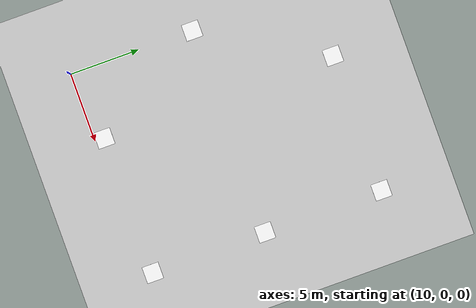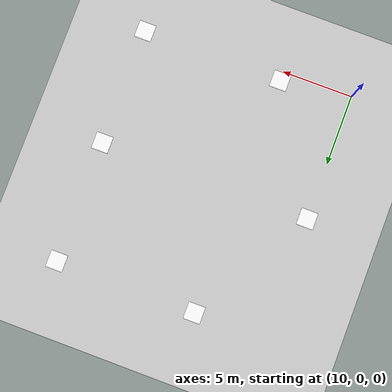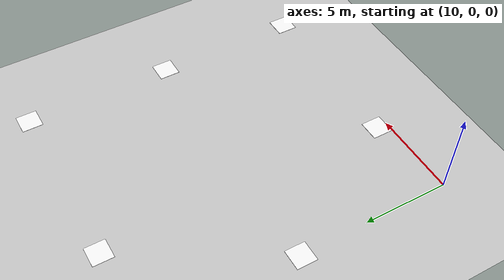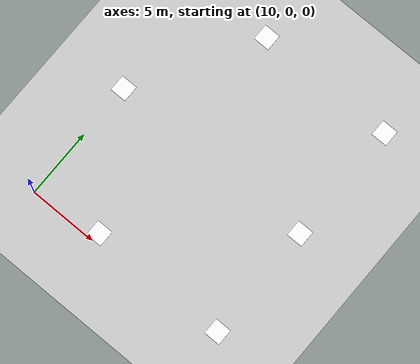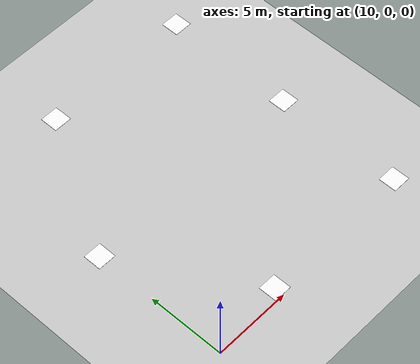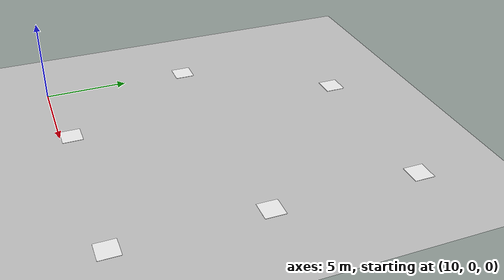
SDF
<sdf version="1.9">
 <world name="sancak_world">
  <plugin filename="gz-sim-physics-system" name="gz::sim::systems::Physics"/>
  <plugin filename="gz-sim-user-commands-system" name="gz::sim::systems::UserCommands"/>
  <plugin filename="gz-sim-scene-broadcaster-system" name="gz::sim::systems::SceneBroadcaster"/>
  <light name="sun" type="directional"><pose>0 0 10 0 0 0</pose></light>
  <include><uri>https://fuel.gazebosim.org/1.0/OpenRobotics/models/Ground Plane</uri></include>
  <include><uri>file:///home/zehra/sancak_ws/models/qr_plaka_1</uri><pose>25.0 9.0 0.02 0 0 0</pose></include>
  <include><uri>file:///home/zehra/sancak_ws/models/qr_plaka_2</uri><pose>25.0 17.66 0.02 0 0 0</pose></include>
  <include><uri>file:///home/zehra/sancak_ws/models/qr_plaka_3</uri><pose>15.0 0.66 0.02 0 0 0</pose></include>
  <include><uri>file:///home/zehra/sancak_ws/models/qr_plaka_4</uri><pose>10.0 9.0 0.02 0 0 0</pose></include>
  <include><uri>file:///home/zehra/sancak_ws/models/qr_plaka_5</uri><pose>15.0 17.66 0.02 0 0 0</pose></include>
  <include><uri>file:///home/zehra/sancak_ws/models/qr_plaka_6</uri><pose>25.0 0.66 0.02 0 0 0</pose></include>
 </world>
</sdf>

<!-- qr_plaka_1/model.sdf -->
<sdf version="1.9">

<model name="qr_plaka_1">

  <static>true</static>

  <link name="link">

    <visual name="visual">

      <geometry>
        <box>
          <size>1.2 1.2 0.02</size>
        </box>
      </geometry>

      <material>
        <diffuse>1 1 1 1</diffuse>
        <ambient>1 1 1 1</ambient>

        <pbr>
          <metal>
            <albedo_map>
              file:///home/tunahan/sancak_ws/models/qr_plaka_1/materials/textures/qr_1.png
            </albedo_map>
          </metal>
        </pbr>

      </material>

    </visual>

    <collision name="collision">

      <geometry>
        <box>
          <size>1.2 1.2 0.02</size>
        </box>
      </geometry>

    </collision>

  </link>

</model>

</sdf>

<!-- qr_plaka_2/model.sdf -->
<sdf version="1.9">

<model name="qr_plaka_2">

  <static>true</static>

  <link name="link">

    <visual name="visual">

      <geometry>
        <box>
          <size>1.2 1.2 0.02</size>
        </box>
      </geometry>

      <material>
        <ambient>1 1 1 1</ambient>
        <diffuse>1 1 1 1</diffuse>

        <pbr>
          <metal>
            <albedo_map>
              file:///home/tunahan/sancak_ws/models/qr_plaka_2/materials/textures/qr_2.png
            </albedo_map>
          </metal>
        </pbr>

      </material>

    </visual>

    <collision name="collision">
      <geometry>
        <box>
          <size>1.2 1.2 0.02</size>
        </box>
      </geometry>
    </collision>

  </link>

</model>

</sdf>

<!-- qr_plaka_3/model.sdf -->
<sdf version="1.9">

<model name="qr_plaka_3">

  <static>true</static>

  <link name="link">

    <visual name="visual">

      <geometry>
        <box>
          <size>1.2 1.2 0.02</size>
        </box>
      </geometry>

      <material>
        <ambient>1 1 1 1</ambient>
        <diffuse>1 1 1 1</diffuse>

        <pbr>
          <metal>
            <albedo_map>
              file:///home/tunahan/sancak_ws/models/qr_plaka_3/materials/textures/qr_3.png
            </albedo_map>
          </metal>
        </pbr>

      </material>

    </visual>

    <collision name="collision">
      <geometry>
        <box>
          <size>1.2 1.2 0.02</size>
        </box>
      </geometry>
    </collision>

  </link>

</model>

</sdf>

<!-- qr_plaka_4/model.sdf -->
<sdf version="1.9">

<model name="qr_plaka_4">

  <static>true</static>

  <link name="link">

    <visual name="visual">

      <geometry>
        <box>
          <size>1.2 1.2 0.02</size>
        </box>
      </geometry>

      <material>
        <ambient>1 1 1 1</ambient>
        <diffuse>1 1 1 1</diffuse>

        <pbr>
          <metal>
            <albedo_map>
              file:///home/tunahan/sancak_ws/models/qr_plaka_4/materials/textures/qr_4.png
            </albedo_map>
          </metal>
        </pbr>

      </material>

    </visual>

    <collision name="collision">
      <geometry>
        <box>
          <size>1.2 1.2 0.02</size>
        </box>
      </geometry>
    </collision>

  </link>

</model>

</sdf>

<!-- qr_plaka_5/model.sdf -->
<sdf version="1.9">

<model name="qr_plaka_5">

  <static>true</static>

  <link name="link">

    <visual name="visual">

      <geometry>
        <box>
          <size>1.2 1.2 0.02</size>
        </box>
      </geometry>

      <material>
        <ambient>1 1 1 1</ambient>
        <diffuse>1 1 1 1</diffuse>

        <pbr>
          <metal>
            <albedo_map>
              file:///home/tunahan/sancak_ws/models/qr_plaka_5/materials/textures/qr_5.png
            </albedo_map>
          </metal>
        </pbr>

      </material>

    </visual>

    <collision name="collision">
      <geometry>
        <box>
          <size>1.2 1.2 0.02</size>
        </box>
      </geometry>
    </collision>

  </link>

</model>

</sdf>

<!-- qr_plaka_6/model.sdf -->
<sdf version="1.9">

<model name="qr_plaka_6">

  <static>true</static>

  <link name="link">

    <visual name="visual">

      <geometry>
        <box>
          <size>1.2 1.2 0.02</size>
        </box>
      </geometry>

      <material>
        <ambient>1 1 1 1</ambient>
        <diffuse>1 1 1 1</diffuse>

        <pbr>
          <metal>
            <albedo_map>
              file:///home/tunahan/sancak_ws/models/qr_plaka_6/materials/textures/qr_6.png
            </albedo_map>
          </metal>
        </pbr>

      </material>

    </visual>

    <collision name="collision">
      <geometry>
        <box>
          <size>1.2 1.2 0.02</size>
        </box>
      </geometry>
    </collision>

  </link>

</model>

</sdf>
